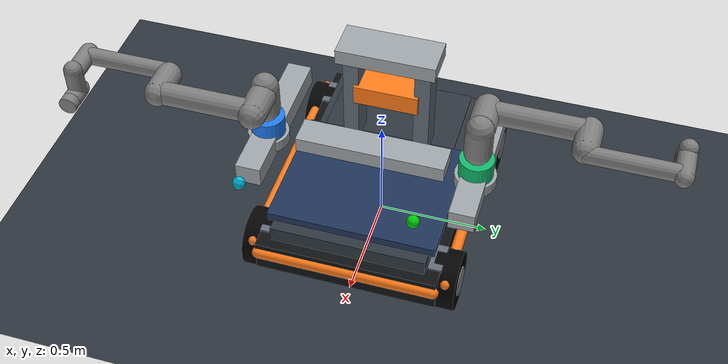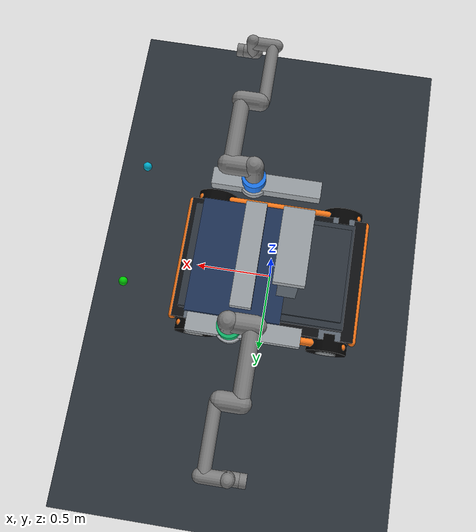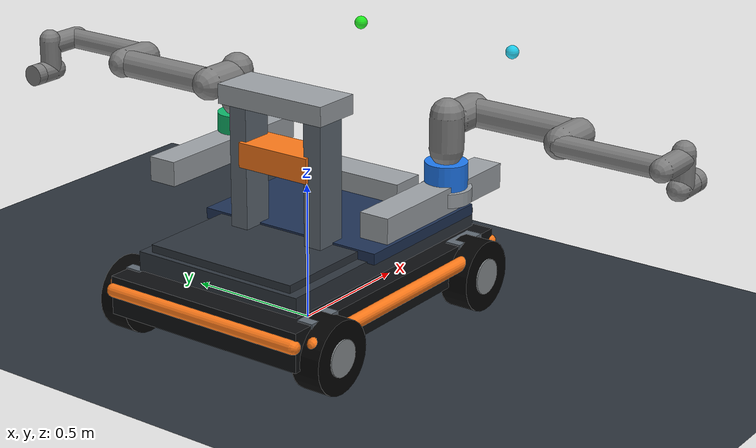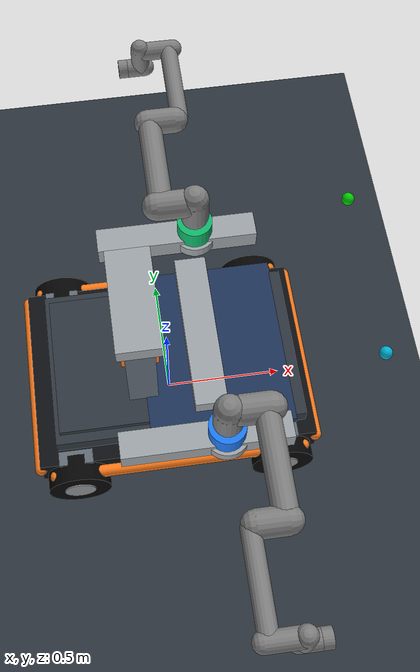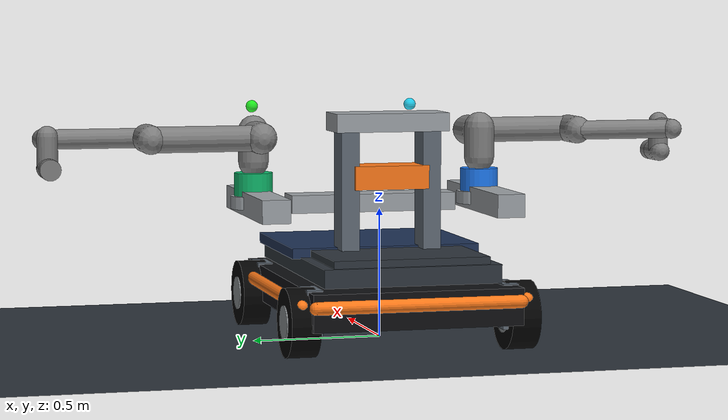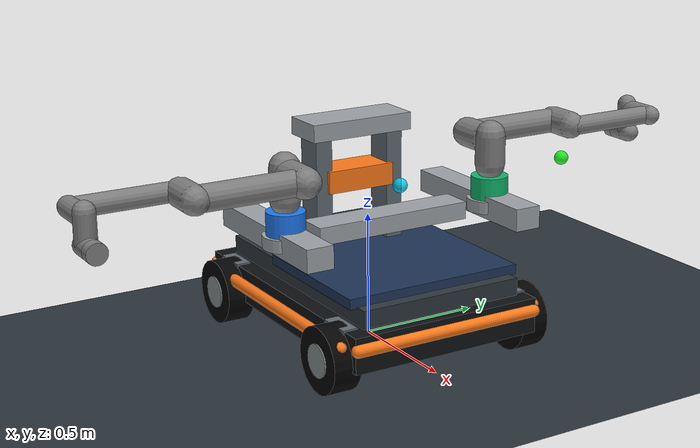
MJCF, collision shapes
<mujoco model="wheeled_dual_ur5e_v2">
  <compiler angle="radian" autolimits="true"/>
  <option timestep="0.002" integrator="implicitfast" gravity="0 0 -9.81"/>
  <visual>
    <headlight diffuse="0.6 0.6 0.6" ambient="0.3 0.3 0.3" specular="0 0 0"/>
    <rgba haze="0.15 0.25 0.35 1"/>
    <global azimuth="125" elevation="-18"/>
    <quality shadowsize="4096"/>
    <map force="0.1" zfar="30"/>
  </visual>
  <asset>
    <texture type="skybox" builtin="gradient" rgb1="0.28 0.40 0.56" rgb2="0.02 0.03 0.05" width="512" height="3072"/>
    <texture type="2d" name="groundplane" builtin="checker" mark="edge" rgb1="0.22 0.25 0.28" rgb2="0.12 0.15 0.18" markrgb="0.75 0.75 0.75" width="300" height="300"/>
    <material name="groundplane" texture="groundplane" texuniform="true" texrepeat="6 6" reflectance="0.18"/>
    <material name="mat_base_dark" rgba="0.055 0.060 0.070 1"/>
    <material name="mat_base_panel" rgba="0.18 0.21 0.24 1"/>
    <material name="mat_base_blue" rgba="0.12 0.20 0.34 1"/>
    <material name="mat_rubber" rgba="0.015 0.015 0.015 1"/>
    <material name="mat_hub" rgba="0.55 0.57 0.58 1"/>
    <material name="mat_aluminum" rgba="0.62 0.64 0.66 1"/>
    <material name="mat_column" rgba="0.38 0.42 0.46 1"/>
    <material name="mat_accent" rgba="1.0 0.48 0.10 1"/>
    <material name="mat_left_arm" rgba="0.06 0.72 0.42 1"/>
    <material name="mat_left_arm_light" rgba="0.16 0.88 0.55 1"/>
    <material name="mat_right_arm" rgba="0.12 0.48 0.95 1"/>
    <material name="mat_right_arm_light" rgba="0.25 0.62 1.00 1"/>
    <material class="ur5e" name="black" rgba="0.033 0.033 0.033 1"/>
    <material class="ur5e" name="jointgray" rgba="0.278 0.278 0.278 1"/>
    <material class="ur5e" name="linkgray" rgba="0.82 0.82 0.82 1"/>
    <material class="ur5e" name="urblue" rgba="0.49 0.678 0.8 1"/>
    <mesh file="mujoco_menager/mujoco_menagerie/universal_robots_ur5e/assets/base_0.obj"/>
    <mesh file="mujoco_menager/mujoco_menagerie/universal_robots_ur5e/assets/base_1.obj"/>
    <mesh file="mujoco_menager/mujoco_menagerie/universal_robots_ur5e/assets/shoulder_0.obj"/>
    <mesh file="mujoco_menager/mujoco_menagerie/universal_robots_ur5e/assets/shoulder_1.obj"/>
    <mesh file="mujoco_menager/mujoco_menagerie/universal_robots_ur5e/assets/shoulder_2.obj"/>
    <mesh file="mujoco_menager/mujoco_menagerie/universal_robots_ur5e/assets/upperarm_0.obj"/>
    <mesh file="mujoco_menager/mujoco_menagerie/universal_robots_ur5e/assets/upperarm_1.obj"/>
    <mesh file="mujoco_menager/mujoco_menagerie/universal_robots_ur5e/assets/upperarm_2.obj"/>
    <mesh file="mujoco_menager/mujoco_menagerie/universal_robots_ur5e/assets/upperarm_3.obj"/>
    <mesh file="mujoco_menager/mujoco_menagerie/universal_robots_ur5e/assets/forearm_0.obj"/>
    <mesh file="mujoco_menager/mujoco_menagerie/universal_robots_ur5e/assets/forearm_1.obj"/>
    <mesh file="mujoco_menager/mujoco_menagerie/universal_robots_ur5e/assets/forearm_2.obj"/>
    <mesh file="mujoco_menager/mujoco_menagerie/universal_robots_ur5e/assets/forearm_3.obj"/>
    <mesh file="mujoco_menager/mujoco_menagerie/universal_robots_ur5e/assets/wrist1_0.obj"/>
    <mesh file="mujoco_menager/mujoco_menagerie/universal_robots_ur5e/assets/wrist1_1.obj"/>
    <mesh file="mujoco_menager/mujoco_menagerie/universal_robots_ur5e/assets/wrist1_2.obj"/>
    <mesh file="mujoco_menager/mujoco_menagerie/universal_robots_ur5e/assets/wrist2_0.obj"/>
    <mesh file="mujoco_menager/mujoco_menagerie/universal_robots_ur5e/assets/wrist2_1.obj"/>
    <mesh file="mujoco_menager/mujoco_menagerie/universal_robots_ur5e/assets/wrist2_2.obj"/>
    <mesh file="mujoco_menager/mujoco_menagerie/universal_robots_ur5e/assets/wrist3.obj"/>
  </asset>
  <default>
    <joint limited="true"/>
    <geom contype="1" conaffinity="1" condim="3" solref="0.008 1"/>
    <position kp="400" kv="40" ctrllimited="true"/>
    <default class="ur5e">
      <material specular="0.5" shininess="0.25"/>
      <joint axis="0 1 0" range="-6.28319 6.28319" armature="0.1"/>
      <general gaintype="fixed" biastype="affine" ctrlrange="-6.2831 6.2831" gainprm="2000" biasprm="0 -2000 -400" forcerange="-150 150"/>
      <default class="size3">
        <default class="size3_limited">
          <joint range="-3.1415 3.1415"/>
          <general ctrlrange="-3.1415 3.1415"/>
        </default>
      </default>
      <default class="size1">
        <general gainprm="500" biasprm="0 -500 -100" forcerange="-28 28"/>
      </default>
      <default class="visual">
        <geom type="mesh" contype="0" conaffinity="0" group="2"/>
      </default>
      <default class="collision">
        <geom type="capsule" group="3"/>
        <default class="eef_collision">
          <geom type="cylinder"/>
        </default>
      </default>
      <site size="0.001" rgba="0.5 0.5 0.5 0.3" group="4"/>
    </default>
  </default>
  <worldbody>
    <light pos="0 0 3.8" dir="0 0 -1" directional="true" diffuse="0.45 0.45 0.45" specular="0.10 0.10 0.10"/>
    <light pos="2.0 1.4 2.4" dir="-1.5 -1 -1.3" diffuse="0.55 0.55 0.55"/>
    <geom name="floor" type="plane" size="0 0 0.05" pos="0 0 0" material="groundplane" contype="1" conaffinity="1"/>
    <body name="left_target_body" mocap="true" pos="0.78 0.34 0.86">
      <site name="left_target_site" type="sphere" size="0.025" rgba="0 1 0 0.82"/>
    </body>
    <body name="right_target_body" mocap="true" pos="0.78 -0.34 0.86">
      <site name="right_target_site" type="sphere" size="0.025" rgba="0 0.85 1 0.82"/>
    </body>
    <!-- Virtual mobile base. Joint order intentionally matches the existing
         dual-arm model: base_x -> base_y -> base_yaw -> base_z -> arms. -->
    <body name="base_x_body" pos="0 0 0">
      <inertial pos="0 0 0" mass="1.0" diaginertia="0.05 0.05 0.05"/>
      <joint name="base_x" type="slide" axis="1 0 0" range="-3.0 3.0" damping="10.0"/>
      <body name="base_y_body">
        <inertial pos="0 0 0" mass="1.0" diaginertia="0.05 0.05 0.05"/>
        <joint name="base_y" type="slide" axis="0 1 0" range="-3.0 3.0" damping="10.0"/>
        <body name="base_yaw_body">
          <inertial pos="0 0 0" mass="1.0" diaginertia="0.05 0.05 0.05"/>
          <joint name="base_yaw" type="hinge" axis="0 0 1" range="-3.1416 3.1416" damping="5.0"/>
          <!-- Four-wheel industrial mobile base. The wheels stay on the floor
               because they are attached before the virtual lift joint. -->
          <body name="mobile_base" pos="0 0 0.18">
            <inertial pos="0 0 0.02" mass="58.0" diaginertia="4.0 5.0 6.0"/>
            <!-- Lower tub and top equipment deck -->
            <geom type="box" size="0.58 0.40 0.070" pos="0 0 0.000" material="mat_base_dark" mass="34.0"/>
            <geom type="box" size="0.52 0.34 0.035" pos="0.02 0 0.115" material="mat_base_panel" mass="12.0"/>
            <geom type="box" size="0.30 0.37 0.020" pos="0.19 0 0.165" material="mat_base_blue" mass="4.0"/>
            <geom type="box" size="0.24 0.30 0.020" pos="-0.24 0 0.158" material="mat_base_panel" mass="3.0"/>
            <!-- Orange protective bumper rails -->
            <geom type="capsule" fromto=" 0.58  0.39 0.020  0.58 -0.39 0.020" size="0.025" material="mat_accent" mass="0.7"/>
            <geom type="capsule" fromto="-0.58  0.39 0.020 -0.58 -0.39 0.020" size="0.025" material="mat_accent" mass="0.7"/>
            <geom type="capsule" fromto="-0.52  0.43 0.020  0.52  0.43 0.020" size="0.025" material="mat_accent" mass="0.7"/>
            <geom type="capsule" fromto="-0.52 -0.43 0.020  0.52 -0.43 0.020" size="0.025" material="mat_accent" mass="0.7"/>
            <!-- Four wheel modules: tire, hub, and fork. Visual only in V2. -->
            <body name="front_left_wheel_module" pos="0.43 0.42 -0.050">
              <geom type="box" size="0.070 0.030 0.085" pos="0 -0.045 0.040" material="mat_column" mass="0.8"/>
              <geom type="cylinder" size="0.130 0.055" euler="1.5708 0 0" material="mat_rubber" mass="2.5"/>
              <geom type="cylinder" size="0.065 0.060" euler="1.5708 0 0" material="mat_hub" mass="0.5"/>
            </body>
            <body name="front_right_wheel_module" pos="0.43 -0.42 -0.050">
              <geom type="box" size="0.070 0.030 0.085" pos="0 0.045 0.040" material="mat_column" mass="0.8"/>
              <geom type="cylinder" size="0.130 0.055" euler="1.5708 0 0" material="mat_rubber" mass="2.5"/>
              <geom type="cylinder" size="0.065 0.060" euler="1.5708 0 0" material="mat_hub" mass="0.5"/>
            </body>
            <body name="rear_left_wheel_module" pos="-0.43 0.42 -0.050">
              <geom type="box" size="0.070 0.030 0.085" pos="0 -0.045 0.040" material="mat_column" mass="0.8"/>
              <geom type="cylinder" size="0.130 0.055" euler="1.5708 0 0" material="mat_rubber" mass="2.5"/>
              <geom type="cylinder" size="0.065 0.060" euler="1.5708 0 0" material="mat_hub" mass="0.5"/>
            </body>
            <body name="rear_right_wheel_module" pos="-0.43 -0.42 -0.050">
              <geom type="box" size="0.070 0.030 0.085" pos="0 0.045 0.040" material="mat_column" mass="0.8"/>
              <geom type="cylinder" size="0.130 0.055" euler="1.5708 0 0" material="mat_rubber" mass="2.5"/>
              <geom type="cylinder" size="0.065 0.060" euler="1.5708 0 0" material="mat_hub" mass="0.5"/>
            </body>
            <!-- Fixed mast / torso rails on the chassis. The moving carriage and
                 arms are children of base_z_body below. -->
            <geom type="box" size="0.060 0.035 0.260" pos="-0.12  0.16 0.400" material="mat_column" mass="3.0"/>
            <geom type="box" size="0.060 0.035 0.260" pos="-0.12 -0.16 0.400" material="mat_column" mass="3.0"/>
            <geom type="box" size="0.090 0.220 0.035" pos="-0.12 0 0.665" material="mat_aluminum" mass="2.0"/>
          </body>
          <!-- Virtual lift. Only the upper carriage and arms move vertically. -->
          <body name="base_z_body" pos="0 0 0">
            <inertial pos="0 0 0.55" mass="10.0" diaginertia="0.6 0.6 0.4"/>
            <joint name="base_z" type="slide" axis="0 0 1" range="0.0 0.5" damping="10.0"/>
            <!-- Moving lift carriage and dual shoulder bridge -->
            <geom type="box" size="0.075 0.145 0.045" pos="-0.12 0 0.635" material="mat_accent" mass="3.0"/>
            <geom type="box" size="0.340 0.055 0.045" pos="0.10 0.46 0.520" material="mat_aluminum" mass="2.0"/>
            <geom type="box" size="0.340 0.055 0.045" pos="0.10 -0.46 0.520" material="mat_aluminum" mass="2.0"/>
            <geom type="box" size="0.065 0.330 0.035" pos="0.14 0 0.515" material="mat_aluminum" mass="2.0"/>
            <!-- Left shoulder pedestal -->
            <body name="left_shoulder_mount" pos="0.18 0.46 0.520">
              <inertial pos="0 0 0.035" mass="5.0" diaginertia="0.10 0.10 0.08"/>
              <geom type="cylinder" size="0.090 0.025" pos="0 0 0.000" material="mat_aluminum" mass="1.0"/>
              <geom type="cylinder" size="0.075 0.055" pos="0 0 0.060" material="mat_left_arm" mass="2.0"/>
              <body name="left_ur5e_base" quat="-0.70710678 0 0 -0.70710678" childclass="ur5e" pos="0 0 0.095">
                <inertial mass="4.0" pos="0 0 0" diaginertia="0.00443333156 0.00443333156 0.0072"/>
                <geom mesh="base_0" material="black" class="visual"/>
                <geom mesh="base_1" material="jointgray" class="visual"/>
                <body name="left_shoulder_link" pos="0 0 0.163">
                  <inertial mass="3.7" pos="0 0 0" diaginertia="0.0102675 0.0102675 0.00666"/>
                  <joint name="left_shoulder_pan_joint" class="size3" axis="0 0 1"/>
                  <geom mesh="shoulder_0" material="urblue" class="visual"/>
                  <geom mesh="shoulder_1" material="black" class="visual"/>
                  <geom mesh="shoulder_2" material="jointgray" class="visual"/>
                  <geom class="collision" size="0.06 0.06" pos="0 0 -0.04"/>
                  <body name="left_upper_arm_link" pos="0 0.138 0" quat="1 0 1 0">
                    <inertial mass="8.393" pos="0 0 0.2125" diaginertia="0.133886 0.133886 0.0151074"/>
                    <joint name="left_shoulder_lift_joint" class="size3"/>
                    <geom mesh="upperarm_0" material="linkgray" class="visual"/>
                    <geom mesh="upperarm_1" material="black" class="visual"/>
                    <geom mesh="upperarm_2" material="jointgray" class="visual"/>
                    <geom mesh="upperarm_3" material="urblue" class="visual"/>
                    <geom class="collision" pos="0 -0.04 0" quat="1 1 0 0" size="0.06 0.06"/>
                    <geom class="collision" size="0.05 0.2" pos="0 0 0.2"/>
                    <body name="left_forearm_link" pos="0 -0.131 0.425">
                      <inertial mass="2.275" pos="0 0 0.196" diaginertia="0.0311796 0.0311796 0.004095"/>
                      <joint name="left_elbow_joint" class="size3_limited"/>
                      <geom mesh="forearm_0" material="urblue" class="visual"/>
                      <geom mesh="forearm_1" material="linkgray" class="visual"/>
                      <geom mesh="forearm_2" material="black" class="visual"/>
                      <geom mesh="forearm_3" material="jointgray" class="visual"/>
                      <geom class="collision" pos="0 0.08 0" quat="1 1 0 0" size="0.055 0.06"/>
                      <geom class="collision" size="0.038 0.19" pos="0 0 0.2"/>
                      <body name="left_wrist_1_link" pos="0 0 0.392" quat="1 0 1 0">
                        <inertial mass="1.219" pos="0 0.127 0" diaginertia="0.0025599 0.0025599 0.0021942"/>
                        <joint name="left_wrist_1_joint" class="size1"/>
                        <geom mesh="wrist1_0" material="black" class="visual"/>
                        <geom mesh="wrist1_1" material="urblue" class="visual"/>
                        <geom mesh="wrist1_2" material="jointgray" class="visual"/>
                        <geom class="collision" pos="0 0.05 0" quat="1 1 0 0" size="0.04 0.07"/>
                        <body name="left_wrist_2_link" pos="0 0.127 0">
                          <inertial mass="1.219" pos="0 0 0.1" diaginertia="0.0025599 0.0025599 0.0021942"/>
                          <joint name="left_wrist_2_joint" axis="0 0 1" class="size1"/>
                          <geom mesh="wrist2_0" material="black" class="visual"/>
                          <geom mesh="wrist2_1" material="urblue" class="visual"/>
                          <geom mesh="wrist2_2" material="jointgray" class="visual"/>
                          <geom class="collision" size="0.04 0.06" pos="0 0 0.04"/>
                          <geom class="collision" pos="0 0.02 0.1" quat="1 1 0 0" size="0.04 0.04"/>
                          <body name="left_wrist_3_link" pos="0 0 0.1">
                            <inertial mass="0.1889" pos="0 0.0771683 0" quat="1 0 0 1" diaginertia="0.000132134 9.90863e-05 9.90863e-05"/>
                            <joint name="left_wrist_3_joint" class="size1"/>
                            <geom material="linkgray" mesh="wrist3" class="visual"/>
                            <geom class="eef_collision" pos="0 0.08 0" quat="1 1 0 0" size="0.04 0.02"/>
                            <site name="left_ee_site" pos="0 0.1 0" quat="-1 1 0 0" size="0.022" rgba="0 1 0 1" type="sphere"/>
                          </body>
                        </body>
                      </body>
                    </body>
                  </body>
                </body>
              </body>
            </body>
            <!-- Right shoulder pedestal -->
            <body name="right_shoulder_mount" pos="0.18 -0.46 0.520">
              <inertial pos="0 0 0.035" mass="5.0" diaginertia="0.10 0.10 0.08"/>
              <geom type="cylinder" size="0.090 0.025" pos="0 0 0.000" material="mat_aluminum" mass="1.0"/>
              <geom type="cylinder" size="0.075 0.055" pos="0 0 0.060" material="mat_right_arm" mass="2.0"/>
              <body name="right_ur5e_base" quat="0.70710678 0 0 -0.70710678" childclass="ur5e" pos="0 0 0.095">
                <inertial mass="4.0" pos="0 0 0" diaginertia="0.00443333156 0.00443333156 0.0072"/>
                <geom mesh="base_0" material="black" class="visual"/>
                <geom mesh="base_1" material="jointgray" class="visual"/>
                <body name="right_shoulder_link" pos="0 0 0.163">
                  <inertial mass="3.7" pos="0 0 0" diaginertia="0.0102675 0.0102675 0.00666"/>
                  <joint name="right_shoulder_pan_joint" class="size3" axis="0 0 1"/>
                  <geom mesh="shoulder_0" material="urblue" class="visual"/>
                  <geom mesh="shoulder_1" material="black" class="visual"/>
                  <geom mesh="shoulder_2" material="jointgray" class="visual"/>
                  <geom class="collision" size="0.06 0.06" pos="0 0 -0.04"/>
                  <body name="right_upper_arm_link" pos="0 0.138 0" quat="1 0 1 0">
                    <inertial mass="8.393" pos="0 0 0.2125" diaginertia="0.133886 0.133886 0.0151074"/>
                    <joint name="right_shoulder_lift_joint" class="size3"/>
                    <geom mesh="upperarm_0" material="linkgray" class="visual"/>
                    <geom mesh="upperarm_1" material="black" class="visual"/>
                    <geom mesh="upperarm_2" material="jointgray" class="visual"/>
                    <geom mesh="upperarm_3" material="urblue" class="visual"/>
                    <geom class="collision" pos="0 -0.04 0" quat="1 1 0 0" size="0.06 0.06"/>
                    <geom class="collision" size="0.05 0.2" pos="0 0 0.2"/>
                    <body name="right_forearm_link" pos="0 -0.131 0.425">
                      <inertial mass="2.275" pos="0 0 0.196" diaginertia="0.0311796 0.0311796 0.004095"/>
                      <joint name="right_elbow_joint" class="size3_limited"/>
                      <geom mesh="forearm_0" material="urblue" class="visual"/>
                      <geom mesh="forearm_1" material="linkgray" class="visual"/>
                      <geom mesh="forearm_2" material="black" class="visual"/>
                      <geom mesh="forearm_3" material="jointgray" class="visual"/>
                      <geom class="collision" pos="0 0.08 0" quat="1 1 0 0" size="0.055 0.06"/>
                      <geom class="collision" size="0.038 0.19" pos="0 0 0.2"/>
                      <body name="right_wrist_1_link" pos="0 0 0.392" quat="1 0 1 0">
                        <inertial mass="1.219" pos="0 0.127 0" diaginertia="0.0025599 0.0025599 0.0021942"/>
                        <joint name="right_wrist_1_joint" class="size1"/>
                        <geom mesh="wrist1_0" material="black" class="visual"/>
                        <geom mesh="wrist1_1" material="urblue" class="visual"/>
                        <geom mesh="wrist1_2" material="jointgray" class="visual"/>
                        <geom class="collision" pos="0 0.05 0" quat="1 1 0 0" size="0.04 0.07"/>
                        <body name="right_wrist_2_link" pos="0 0.127 0">
                          <inertial mass="1.219" pos="0 0 0.1" diaginertia="0.0025599 0.0025599 0.0021942"/>
                          <joint name="right_wrist_2_joint" axis="0 0 1" class="size1"/>
                          <geom mesh="wrist2_0" material="black" class="visual"/>
                          <geom mesh="wrist2_1" material="urblue" class="visual"/>
                          <geom mesh="wrist2_2" material="jointgray" class="visual"/>
                          <geom class="collision" size="0.04 0.06" pos="0 0 0.04"/>
                          <geom class="collision" pos="0 0.02 0.1" quat="1 1 0 0" size="0.04 0.04"/>
                          <body name="right_wrist_3_link" pos="0 0 0.1">
                            <inertial mass="0.1889" pos="0 0.0771683 0" quat="1 0 0 1" diaginertia="0.000132134 9.90863e-05 9.90863e-05"/>
                            <joint name="right_wrist_3_joint" class="size1"/>
                            <geom material="linkgray" mesh="wrist3" class="visual"/>
                            <geom class="eef_collision" pos="0 0.08 0" quat="1 1 0 0" size="0.04 0.02"/>
                            <site name="right_ee_site" pos="0 0.1 0" quat="-1 1 0 0" size="0.022" rgba="0 0.85 1 1" type="sphere"/>
                          </body>
                        </body>
                      </body>
                    </body>
                  </body>
                </body>
              </body>
            </body>
          </body>
        </body>
      </body>
    </body>
  </worldbody>
  <actuator>
    <!-- Base actuators (4): torque control -->
    <motor name="act_base_x" joint="base_x" gear="1" ctrllimited="true" ctrlrange="-200 200"/>
    <motor name="act_base_y" joint="base_y" gear="1" ctrllimited="true" ctrlrange="-200 200"/>
    <motor name="act_base_z" joint="base_z" gear="1" ctrllimited="true" ctrlrange="-1000 1000"/>
    <motor name="act_base_yaw" joint="base_yaw" gear="1" ctrllimited="true" ctrlrange="-100 100"/>
    <!-- Left arm actuators (6): torque control -->
    <motor name="act_left_shoulder_pan" joint="left_shoulder_pan_joint" gear="1" ctrllimited="true" ctrlrange="-150 150"/>
    <motor name="act_left_shoulder_lift" joint="left_shoulder_lift_joint" gear="1" ctrllimited="true" ctrlrange="-150 150"/>
    <motor name="act_left_elbow" joint="left_elbow_joint" gear="1" ctrllimited="true" ctrlrange="-150 150"/>
    <motor name="act_left_wrist_1" joint="left_wrist_1_joint" gear="1" ctrllimited="true" ctrlrange="-28 28"/>
    <motor name="act_left_wrist_2" joint="left_wrist_2_joint" gear="1" ctrllimited="true" ctrlrange="-28 28"/>
    <motor name="act_left_wrist_3" joint="left_wrist_3_joint" gear="1" ctrllimited="true" ctrlrange="-28 28"/>
    <!-- Right arm actuators (6): torque control -->
    <motor name="act_right_shoulder_pan" joint="right_shoulder_pan_joint" gear="1" ctrllimited="true" ctrlrange="-150 150"/>
    <motor name="act_right_shoulder_lift" joint="right_shoulder_lift_joint" gear="1" ctrllimited="true" ctrlrange="-150 150"/>
    <motor name="act_right_elbow" joint="right_elbow_joint" gear="1" ctrllimited="true" ctrlrange="-150 150"/>
    <motor name="act_right_wrist_1" joint="right_wrist_1_joint" gear="1" ctrllimited="true" ctrlrange="-28 28"/>
    <motor name="act_right_wrist_2" joint="right_wrist_2_joint" gear="1" ctrllimited="true" ctrlrange="-28 28"/>
    <motor name="act_right_wrist_3" joint="right_wrist_3_joint" gear="1" ctrllimited="true" ctrlrange="-28 28"/>
  </actuator>
  <keyframe>
    <key name="home" qpos="0 0 0 0.2  0 -1.2 1.6 -0.4 -1.5708 0  0 -1.2 1.6 -0.4 -1.5708 0" ctrl="0 0 0.2 0  0 -1.2 1.6 -0.4 -1.5708 0  0 -1.2 1.6 -0.4 -1.5708 0"/>
  </keyframe>
</mujoco>
